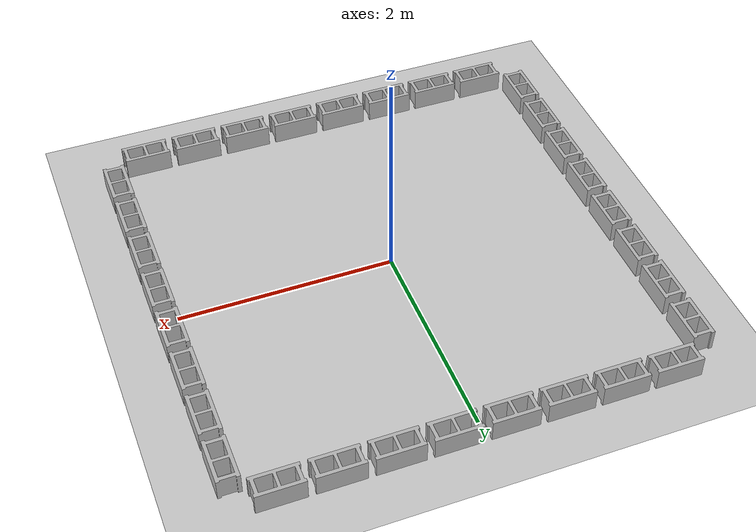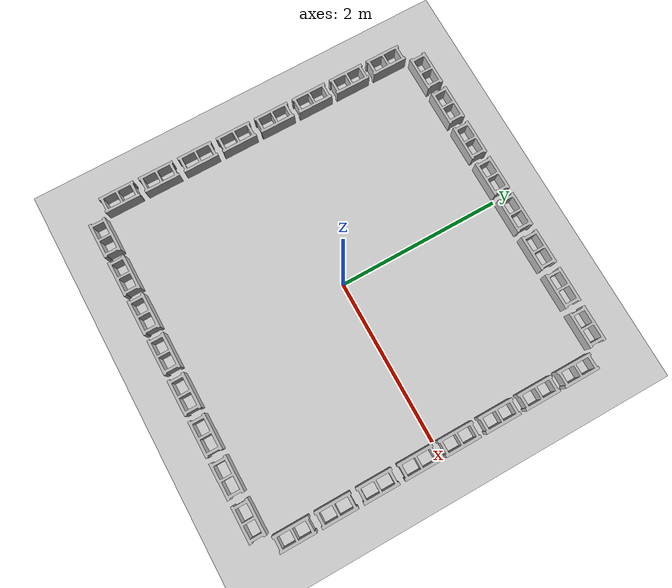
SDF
<?xml version="1.0" ?>
<sdf version='1.4'>
  <world name='default'>
    <!-- A global light source -->
    <include>
      <uri>model://sun</uri>
    </include>
    <!-- A ground plane -->
    <include>
      <uri>model://ground_plane</uri>
    </include>
    <!-- Own physics settings to speed up simulation -->
    <physics type='ode'>
      <max_step_size>0.01</max_step_size>
      <real_time_factor>1</real_time_factor>
      <real_time_update_rate>100</real_time_update_rate>
      <gravity>0 0 -9.8</gravity>
    </physics>
    <scene>
      <ambient>0.4 0.4 0.4 1</ambient>
      <background>0.7 0.7 0.7 1</background>
      <shadows>1</shadows>
    </scene>
    <spherical_coordinates>
      <surface_model>EARTH_WGS84</surface_model>
      <latitude_deg>0</latitude_deg>
      <longitude_deg>0</longitude_deg>
      <elevation>0</elevation>
      <heading_deg>0</heading_deg>
    </spherical_coordinates>
    <model name='cinder_block_1'>
      <include>
        <uri>model://cinder_block</uri>
      </include>
      <pose>1.75 -2.1016 0 0 0 0</pose>
      <static>1</static>
    </model>
    <model name='cinder_block_2'>
      <include>
        <uri>model://cinder_block</uri>
      </include>
      <pose>1.25 -2.1016 0 0 0 0</pose>
      <static>1</static>
    </model>
    <model name='cinder_block_3'>
      <include>
        <uri>model://cinder_block</uri>
      </include>
      <pose>0.75 -2.1016 0 0 0 0</pose>
      <static>1</static>
    </model>
    <model name='cinder_block_4'>
      <include>
        <uri>model://cinder_block</uri>
      </include>
      <pose>0.25 -2.1016 0 0 0 0</pose>
      <static>1</static>
    </model>
    <model name='cinder_block_5'>
      <include>
        <uri>model://cinder_block</uri>
      </include>
      <pose>-0.25 -2.1016 0 0 0 0</pose>
      <static>1</static>
    </model>
    <model name='cinder_block_6'>
      <include>
        <uri>model://cinder_block</uri>
      </include>
      <pose>-0.75 -2.1016 0 0 0 0</pose>
      <static>1</static>
    </model>
    <model name='cinder_block_7'>
      <include>
        <uri>model://cinder_block</uri>
      </include>
        <pose>-1.25 -2.1016 0 0 0 0</pose>
      <static>1</static>
    </model>
    <model name='cinder_block_8'>
      <include>
        <uri>model://cinder_block</uri>
      </include>
      <pose>-1.75 -2.1016 0 0 0 0</pose>
      <static>1</static>
    </model>
    <model name='cinder_block_9'>
      <include>
        <uri>model://cinder_block</uri>
      </include>
      <pose>-2.1016 -1.75 0 0 0 -1.570796</pose>
      <static>1</static>
    </model>
    <model name='cinder_block_10'>
      <include>
        <uri>model://cinder_block</uri>
      </include>
      <pose>-2.1016 -1.25 0 0 0 -1.570796</pose>
      <static>1</static>
    </model>
    <model name='cinder_block_11'>
      <include>
        <uri>model://cinder_block</uri>
      </include>
      <pose>-2.1016 -0.75 0 0 0 -1.570796</pose>
      <static>1</static>
    </model>
    <model name='cinder_block_12'>
      <include>
        <uri>model://cinder_block</uri>
      </include>
      <pose>-2.1016 -0.25 0 0 0 -1.570796</pose>
      <static>1</static>
    </model>
    <model name='cinder_block_13'>
      <include>
        <uri>model://cinder_block</uri>
      </include>
      <pose>-2.1016 0.25 0 0 0 -1.570796</pose>
      <static>1</static>
    </model>
    <model name='cinder_block_14'>
      <include>
        <uri>model://cinder_block</uri>
      </include>
      <pose>-2.1016 0.75 0 0 0 -1.570796</pose>
      <static>1</static>
    </model>
    <model name='cinder_block_15'>
      <include>
        <uri>model://cinder_block</uri>
      </include>
      <pose>-2.1016 1.25 0 0 0 -1.570796</pose>
      <static>1</static>
    </model>
    <model name='cinder_block_16'>
      <include>
        <uri>model://cinder_block</uri>
      </include>
      <pose>-2.1016 1.75 0 0 0 -1.570796</pose>
      <static>1</static>
    </model>
    <model name='cinder_block_17'>
      <include>
        <uri>model://cinder_block</uri>
      </include>
      <pose>-1.75 2.1016 0 0 0 0</pose>
      <static>1</static>
    </model>
    <model name='cinder_block_18'>
      <include>
        <uri>model://cinder_block</uri>
      </include>
      <pose>-1.25 2.1016 0 0 0 0</pose>
      <static>1</static>
    </model>
    <model name='cinder_block_19'>
      <include>
        <uri>model://cinder_block</uri>
      </include>
      <pose>-0.75 2.1016 0 0 0 0</pose>
      <static>1</static>
    </model>
    <model name='cinder_block_20'>
      <include>
        <uri>model://cinder_block</uri>
      </include>
      <pose>-0.25 2.1016 0 0 0 0</pose>
      <static>1</static>
    </model>
    <model name='cinder_block_21'>
      <include>
        <uri>model://cinder_block</uri>
      </include>
      <pose>0.25 2.1016 0 0 0 0</pose>
      <static>1</static>
    </model>
    <model name='cinder_block_22'>
      <include>
        <uri>model://cinder_block</uri>
      </include>
      <pose>0.75 2.1016 0 0 0 0</pose>
      <static>1</static>
    </model>
    <model name='cinder_block_23'>
      <include>
        <uri>model://cinder_block</uri>
      </include>
      <pose>1.25 2.1016 0 0 0 0</pose>
      <static>1</static>
    </model>
    <model name='cinder_block_24'>
      <include>
        <uri>model://cinder_block</uri>
      </include>
      <pose>1.75 2.1016 0 0 0 0</pose>
      <static>1</static>
    </model>
    <model name='cinder_block_25'>
      <include>
        <uri>model://cinder_block</uri>
      </include>
      <pose>2.1016 1.75 0 0 0 -1.570796</pose>
      <static>1</static>
    </model>
    <model name='cinder_block_26'>
      <include>
        <uri>model://cinder_block</uri>
      </include>
      <pose>2.1016 1.25 0 0 0 -1.570796</pose>
      <static>1</static>
    </model>
    <model name='cinder_block_27'>
      <include>
        <uri>model://cinder_block</uri>
      </include>
      <pose>2.1016 0.75 0 0 0 -1.570796</pose>
      <static>1</static>
    </model>
    <model name='cinder_block_28'>
      <include>
        <uri>model://cinder_block</uri>
      </include>
      <pose>2.1016 0.25 0 0 0 -1.570796</pose>
      <static>1</static>
    </model>
    <model name='cinder_block_29'>
      <include>
        <uri>model://cinder_block</uri>
      </include>
      <pose>2.1016 -0.25 0 0 0 -1.570796</pose>
      <static>1</static>
    </model>
    <model name='cinder_block_30'>
      <include>
        <uri>model://cinder_block</uri>
      </include>
      <pose>2.1016 -0.75 0 0 0 -1.570796</pose>
      <static>1</static>
    </model>
    <model name='cinder_block_31'>
      <include>
        <uri>model://cinder_block</uri>
      </include>
      <pose>2.1016 -1.25 0 0 0 -1.570796</pose>
      <static>1</static>
    </model>
    <model name='cinder_block_32'>
      <include>
        <uri>model://cinder_block</uri>
      </include>
      <pose>2.1016 -1.75 0 0 0 -1.570796</pose>
      <static>1</static>
    </model>
    <gui fullscreen='0'>
      <camera name='user_camera'>
        <pose>0 0 10 0 1.57079 1.57079</pose>
        <view_controller>orbit</view_controller>
      </camera>
    </gui>
  </world>
</sdf>

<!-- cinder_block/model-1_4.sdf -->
<sdf version="1.4">
  <model name="cinder_block">
    <link name="link">
      <inertial>
        <pose>0 0 0.1016  0 0 0</pose>
        <!-- volume about 0.0085 m^3, density 2000 kg/m^3 -->
        <mass>1</mass>
        <!-- approximate as uniform box 0.37 x 0.17 x 0.20 m -->
        <inertia>
          <ixx>0.028705</ixx>
          <ixy>0.0000</ixy><iyy>0.073708</iyy>
          <ixz>0.0000</ixz><iyz>0.0000</iyz><izz>0.06908</izz>
        </inertia>
      </inertial>
      <visual name="visual">
        <geometry>
          <mesh>
            <uri>model://cinder_block/meshes/cinder_block.dae</uri>
          </mesh>
        </geometry>
      </visual>

      <collision name="left">
        <pose>0 -0.08465 0.1016 0 0 0</pose>
        <geometry>
          <box>
            <size>0.43495 0.0339 0.2032</size>
          </box>
        </geometry>
        <surface>
          <contact>
            <ode>
              <max_vel>0.1</max_vel>
              <min_depth>0.001</min_depth>
            </ode>
          </contact>
          <friction>
            <ode>
              <mu>1.0</mu>
              <mu2>1.0</mu2>
            </ode>
          </friction>
        </surface>
      </collision>

      <collision name="right">
        <pose>0 0.08465 0.1016 0 0 0</pose>
        <geometry>
          <box>
            <size>0.43495 0.0339 0.2032</size>
          </box>
        </geometry>
        <surface>
          <contact>
            <ode>
              <max_vel>0.1</max_vel>
              <min_depth>0.001</min_depth>
            </ode>
          </contact>
          <friction>
            <ode>
              <mu>1.0</mu>
              <mu2>1.0</mu2>
            </ode>
          </friction>
        </surface>
      </collision>

      <collision name="front">
        <pose>0.18625 0 0.1016 0 0 0</pose>
        <geometry>
          <box>
            <size>0.0339 0.1354  0.203</size>
          </box>
        </geometry>
        <surface>
          <contact>
            <ode>
              <max_vel>0.1</max_vel>
              <min_depth>0.001</min_depth>
            </ode>
          </contact>
          <friction>
            <ode>
              <mu>1.0</mu>
              <mu2>1.0</mu2>
            </ode>
          </friction>
        </surface>
      </collision>

      <collision name="middle">
        <pose>0 0 0.1016 0 0 0</pose>
        <geometry>
          <box>
            <size>0.0339 0.1354  0.203</size>
          </box>
        </geometry>
        <surface>
          <contact>
            <ode>
              <max_vel>0.1</max_vel>
              <min_depth>0.001</min_depth>
            </ode>
          </contact>
          <friction>
            <ode>
              <mu>1.0</mu>
              <mu2>1.0</mu2>
            </ode>
          </friction>
        </surface>
      </collision>

      <collision name="back">
        <pose>-0.18625 0 0.1016 0 0 0</pose>
        <geometry>
          <box>
            <size>0.0339 0.1354  0.203</size>
          </box>
        </geometry>
        <surface>
          <contact>
            <ode>
              <max_vel>0.1</max_vel>
              <min_depth>0.001</min_depth>
            </ode>
          </contact>
          <friction>
            <ode>
              <mu>1.0</mu>
              <mu2>1.0</mu2>
            </ode>
          </friction>
        </surface>
      </collision>

    </link>
  </model>
</sdf>
